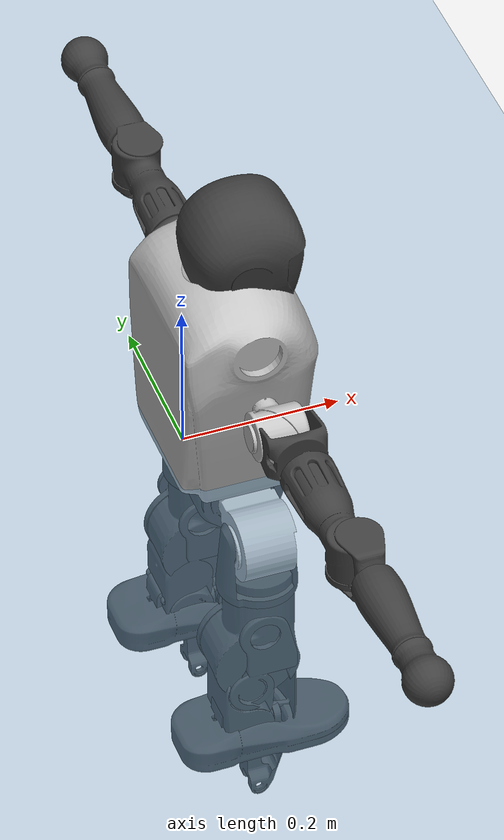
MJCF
<mujoco model="T1">
  <compiler angle="radian" assetdir="assets" balanceinertia="true" inertiafromgeom="false"/>

  <option timestep="0.005" density="1.2" viscosity="2e-05"/>

  <size nkey="1"/>

  <visual>
    <quality shadowsize="8192"/>
    <map shadowclip="0.5"/>
  </visual>

  <default>
    <default class="/">
      <joint armature="0.01" damping="0.01" frictionloss="0.1"/>
      <geom contype="0" conaffinity="0" group="1" solref="-1000 -80"/>
      <site size="0.01 0.005 0.005" group="5"/>
      <general forcelimited="true" biastype="affine" gainprm="25" biasprm="0 -25 -0.6"/>
      <default class="t1">
        <geom rgba="0.25 0.25 0.25 1"/>
        <default class="visual">
          <geom type="mesh" group="2"/>
        </default>
        <default class="collision">
          <geom group="3"/>
        </default>
        <default class="foot">
          <geom size="0.1115 0.05 0.015" type="box" condim="6" group="4" priority="1" solimp="0.015 1 0.015"/>
        </default>
        <default class="reward_collision_sphere">
          <geom group="5" rgba="1 0 0 1"/>
        </default>
      </default>
    </default>
  </default>

  <asset>
    <texture type="skybox" colorspace="auto" name="//unnamed_texture_0" builtin="gradient" rgb1="0.95 0.95 0.95" rgb2="0.95 0.95 0.95" width="100" height="600"/>
    <texture type="2d" colorspace="auto" name="texplane" builtin="checker" rgb1="0.345 0.575 0.748" rgb2="0.345 0.575 0.748" markrgb="1 1 1" width="512" height="512"/>
    <material name="MatPlane" class="/" texture="texplane" texuniform="true" texrepeat="2 2" specular="0.9"/>
    <mesh name="Trunk" class="/" file="Trunk.stl"/>
    <mesh name="H1" class="/" file="H1.stl"/>
    <mesh name="H2" class="/" file="H2.stl"/>
    <mesh name="AL1" class="/" file="AL1.stl"/>
    <mesh name="AL2" class="/" file="AL2.stl"/>
    <mesh name="AL3" class="/" file="AL3.stl"/>
    <mesh name="left_hand_link" class="/" file="left_hand_link.stl"/>
    <mesh name="AR1" class="/" file="AR1.stl"/>
    <mesh name="AR2" class="/" file="AR2.stl"/>
    <mesh name="AR3" class="/" file="AR3.stl"/>
    <mesh name="right_hand_link" class="/" file="right_hand_link.stl"/>
    <mesh name="Waist" class="/" file="Waist.stl"/>
    <mesh name="Hip_Pitch_Left" class="/" file="Hip_Pitch_Left.stl"/>
    <mesh name="Hip_Roll_Left" class="/" file="Hip_Roll_Left.stl"/>
    <mesh name="Hip_Yaw_Left" class="/" file="Hip_Yaw_Left.stl"/>
    <mesh name="Shank_Left" class="/" file="Shank_Left.stl"/>
    <mesh name="Ankle_Cross_Left" class="/" file="Ankle_Cross_Left.stl"/>
    <mesh name="left_foot_link" class="/" file="left_foot_link.stl"/>
    <mesh name="Hip_Pitch_Right" class="/" file="Hip_Pitch_Right.stl"/>
    <mesh name="Hip_Roll_Right" class="/" file="Hip_Roll_Right.stl"/>
    <mesh name="Hip_Yaw_Right" class="/" file="Hip_Yaw_Right.stl"/>
    <mesh name="Shank_Right" class="/" file="Shank_Right.stl"/>
    <mesh name="Ankle_Cross_Right" class="/" file="Ankle_Cross_Right.stl"/>
    <mesh name="right_foot_link" class="/" file="right_foot_link.stl"/>
  </asset>

  <worldbody>
    <geom name="floor" class="/" size="100 100 0.125" type="plane" group="0" material="MatPlane"/>
    <light name="toplight_shadow" class="/" pos="0 0 5" dir="0.0990148 0.0990148 -0.990148" type="directional" ambient="0.04 0.04 0.04" diffuse="0.55 0.55 0.55" specular="0.12 0.12 0.12"/>
    <light name="toplight_fill" class="/" pos="0 0 5" dir="0.0990148 0.0990148 -0.990148" type="directional" castshadow="false" ambient="0.04 0.04 0.04" diffuse="0.3 0.3 0.3" specular="0.08 0.08 0.08"/>
    <body name="trunk" childclass="t1" pos="-0.00195609 0.000186618 -0.0044493" quat="0.999999 -0.000773363 0.000671158 0.000481785">
      <inertial pos="0.0567105 -0.0036175 0.0620319" quat="0.99992 -0.00354191 -0.0121701 -3.34058e-05" mass="8.85954" diaginertia="0.112422 0.0973823 0.00468654"/>
      <joint name="//unnamed_joint_0" type="free" armature="0" damping="0" frictionloss="0"/>
      <geom name="//unnamed_geom_1" class="visual" rgba="0.76 0.76 0.76 1" mesh="Trunk"/>
      <geom name="//unnamed_geom_2" class="collision" size="0.066713 0.0889507 0.133426" pos="0.0618845 0 0.0717526" type="box"/>
      <geom name="//unnamed_geom_3" class="reward_collision_sphere" size="0.102293" pos="0.0618845 0 0.0597938"/>
      <geom name="//unnamed_geom_4" class="reward_collision_sphere" size="0.0133426" pos="0.0618845 0.0883298 0"/>
      <geom name="//unnamed_geom_5" class="reward_collision_sphere" size="0.0133426" pos="0.0618845 -0.0883298 0"/>
      <geom name="//unnamed_geom_6" class="reward_collision_sphere" size="0.0133426" pos="0.0618845 0.111192 0.107629"/>
      <geom name="//unnamed_geom_7" class="reward_collision_sphere" size="0.0133426" pos="0.0618845 -0.111192 0.107629"/>
      <site name="imu" pos="-0.0391681 0.0290332 -0.000639167" size="0.00889507"/>
      <camera name="track" pos="0 -2.07835 0" quat="0.707107 0.707107 0 0" mode="trackcom"/>
      <camera name="ego_camera" pos="0.125832 0 0.251134" quat="-0.5 -0.5 0.5 0.5"/>
      <body name="H1" pos="0.0638969 0.00169464 0.143489" quat="1 0.00070208 0.000393792 -2.09983e-05">
        <inertial pos="-0.00078725 -0.00369613 0.0325023" quat="0.763236 -0.00856106 -0.000693332 0.646062" mass="0.30045" diaginertia="0.00026347 0.000267999 1.0634e-05"/>
        <joint name="AAHead_yaw" pos="0 0 0" axis="0.00147957 0.00239005 0.999996" range="-1.57149 1.52491" armature="0.00949445" damping="0.00776573" frictionloss="0.0831758"/>
        <geom name="//unnamed_geom_8" class="visual" mesh="H1"/>
        <body name="H2" pos="-0.000161904 0.00640003 0.0359385" quat="1 2.63232e-05 0.000472234 -0.000336903">
          <inertial pos="-0.000239473 -0.00564322 0.0561643" quat="0.988736 0.105475 -0.0749035 -0.0752771" mass="0.410113" diaginertia="0.00243733 0.00235902 0.000130991"/>
          <joint name="Head_pitch" pos="0 0 0" axis="0.00511707 -0.999972 -0.00546206" range="-1.22276 0.293285" armature="0.011371" damping="0.0111103" frictionloss="0.0860165"/>
          <geom name="//unnamed_geom_9" class="visual" mesh="H2"/>
          <geom name="//unnamed_geom_10" class="collision" size="0.0711605" pos="0.0103141 0 0.0657732"/>
          <geom name="//unnamed_geom_11" class="reward_collision_sphere" size="0.0800556" pos="0.0206282 0 0.0597938"/>
        </body>
      </body>
      <body name="AL1" pos="0.0638586 0.114197 0.134541" quat="1 9.03263e-05 0.000578915 -0.000183775">
        <inertial pos="-0.00123241 0.0458566 -0.0065903" quat="0.504025 0.50017 -0.504219 0.491479" mass="0.369294" diaginertia="0.00157149 0.0015769 2.25423e-05"/>
        <joint name="Left_Shoulder_Pitch" pos="0 0 0" axis="0.00267051 0.999993 0.00242778" stiffness="0.0266927" range="-3.18702 1.27593" armature="0.00976406" damping="0.0113355" frictionloss="0.0913799"/>
        <geom name="//unnamed_geom_12" class="visual" rgba="0.76 0.76 0.76 1" mesh="AL1"/>
        <body name="AL2" pos="0.0045715 0.0428248 0.00156145" quat="0.999992 0.000531024 0.00380921 -0.000843807">
          <inertial pos="0.00379042 0.0381776 0.00411771" quat="0.492741 0.506816 -0.482044 0.517666" mass="0.0923688" diaginertia="0.000417189 0.000362683 1.20678e-05"/>
          <joint name="Left_Shoulder_Roll" pos="0 0 0" axis="-0.998988 -0.012991 -0.0430678" stiffness="0.00619623" range="-1.52644 1.75998" armature="0.00841369" damping="0.0408225" frictionloss="0.0872918"/>
          <geom name="//unnamed_geom_13" class="visual" mesh="AL2"/>
          <body name="AL3" pos="0.000491359 0.056895 0.00160179" quat="0.999991 0.00395913 -0.000682666 -0.00130836">
            <inertial pos="0.00238187 0.0908574 0.000226181" quat="0.70995 0.703848 0.0143167 -0.0190722" mass="0.659082" diaginertia="0.0134241 0.0145761 4.40903e-05"/>
            <joint name="Left_Elbow_Pitch" pos="0 0 0" axis="-0.00468458 -0.999971 -0.00602336" stiffness="0.00448903" range="-2.25961 2.28627" armature="0.00954287" damping="0.00426343" frictionloss="0.0938098"/>
            <geom name="//unnamed_geom_14" class="visual" mesh="AL3"/>
            <geom name="//unnamed_geom_15" class="collision" size="0.0266852 0.066713" pos="0 0.0519587 0" quat="0.707105 0.707108 0 0" type="cylinder"/>
            <geom name="//unnamed_geom_16" class="reward_collision_sphere" size="0.0320222"/>
            <body name="left_hand_link" pos="0.00438593 0.145423 -0.00238146" quat="0.999994 -0.00125012 0.00309188 -0.000320154">
              <inertial pos="-0.00171778 0.11441 0.006561" quat="0.721183 0.692369 0.0114809 -0.019708" mass="0.253191" diaginertia="0.0103647 0.0110975 1.83683e-05"/>
              <joint name="Left_Elbow_Yaw" pos="0 0 0" axis="0.0255395 0.00425859 0.999665" range="-2.44191 -0.0884703" armature="0.00842829" damping="0.018878" frictionloss="0.0541541"/>
              <geom name="//unnamed_geom_17" class="visual" mesh="left_hand_link"/>
              <geom name="//unnamed_geom_18" class="collision" size="0.0266852 0.0778318" pos="0 0.135093 0" quat="0.707105 0.707108 0 0" type="cylinder"/>
              <geom name="//unnamed_geom_19" class="reward_collision_sphere" size="0.0444753"/>
              <geom name="//unnamed_geom_20" class="reward_collision_sphere" size="0.0311327" pos="0 0.114309 0"/>
              <geom name="//unnamed_geom_21" class="reward_collision_sphere" size="0.0311327" pos="0 0.223422 0"/>
            </body>
          </body>
        </body>
      </body>
      <body name="AR1" pos="0.064661 -0.113712 0.134038" quat="0.999999 -0.000768671 0.000128307 0.000689111">
        <inertial pos="0.00104623 -0.0484606 0.0025242" quat="0.505087 0.493452 -0.497701 0.503672" mass="0.35842" diaginertia="0.00158573 0.00149352 2.13e-05"/>
        <joint name="Right_Shoulder_Pitch" pos="0 0 0" axis="0.00273489 -0.999977 -0.00627764" range="-1.36054 3.26151" armature="0.00813519" damping="0" frictionloss="0.0909889"/>
        <geom name="//unnamed_geom_22" class="visual" rgba="0.76 0.76 0.76 1" mesh="AR1"/>
        <body name="AR2" pos="0.00659147 -0.0528851 0.00257124" quat="1 -0.000231806 9.18368e-05 -0.000489273">
          <inertial pos="0.00575263 -0.0394159 0.00357309" quat="0.51521 0.48922 -0.503924 0.491206" mass="0.115851" diaginertia="0.000504904 0.000461693 1.32999e-05"/>
          <joint name="Right_Shoulder_Roll" pos="0 0 0" axis="-0.999999 0.00150715 -0.00023398" range="-1.76428 1.7052" armature="0.00945099" damping="0.0089724" frictionloss="0.116899"/>
          <geom name="//unnamed_geom_23" class="visual" mesh="AR2"/>
          <body name="AR3" pos="0.00132574 -0.0705983 -0.00585527" quat="0.999999 -0.000533685 0.000401118 0.000820321">
            <inertial pos="-0.000409243 -0.0898293 -0.000203687" quat="0.710687 0.702261 0.0354238 0.0223191" mass="0.72581" diaginertia="0.0152039 0.0149312 4.63465e-05"/>
            <joint name="Right_Elbow_Pitch" pos="0 0 0" axis="0.00224703 0.999994 0.00248864" range="-2.26952 2.25404" armature="0.0079598" damping="0" frictionloss="0.0579311"/>
            <geom name="//unnamed_geom_24" class="visual" mesh="AR3"/>
            <geom name="//unnamed_geom_25" class="collision" size="0.0266852 0.066713" pos="0 -0.0519587 0" quat="0.707105 0.707108 0 0" type="cylinder"/>
            <geom name="//unnamed_geom_26" class="reward_collision_sphere" size="0.0320222"/>
            <body name="right_hand_link" pos="0.00577307 -0.154411 0.000699415" quat="1 -0.000357657 0.00040869 0.000388938">
              <inertial pos="0.00223464 -0.11411 -0.0061384" quat="0.687563 0.725955 -0.0155319 -0.00236481" mass="0.258273" diaginertia="0.0107575 0.0109233 1.81146e-05"/>
              <joint name="Right_Elbow_Yaw" pos="0 0 0" axis="-0.00509883 -0.0139259 0.99989" range="0.0882458 2.47255" armature="0.00511785" damping="0.0165629" frictionloss="0.086707"/>
              <geom name="//unnamed_geom_27" class="visual" mesh="right_hand_link"/>
              <geom name="//unnamed_geom_28" class="collision" size="0.0266852 0.0778318" pos="0 -0.135093 0" quat="0.707105 0.707108 0 0" type="cylinder"/>
              <geom name="//unnamed_geom_29" class="reward_collision_sphere" size="0.0444753"/>
              <geom name="//unnamed_geom_30" class="reward_collision_sphere" size="0.0311327" pos="0 -0.114309 0"/>
              <geom name="//unnamed_geom_31" class="reward_collision_sphere" size="0.0311327" pos="0 -0.223422 0"/>
            </body>
          </body>
        </body>
      </body>
      <body name="Waist" pos="0.0622312 0.000359731 -0.0646866" quat="1 0.000526978 -9.46113e-05 -2.53463e-05">
        <inertial pos="-0.00441298 -0.000342817 0.00363983" quat="0.983993 -0.000619712 -0.17816 0.00406655" mass="1.85204" diaginertia="0.00664911 0.00736473 0.000393026"/>
        <joint name="Waist" pos="0 0 0" axis="0.00284399 -0.00353538 0.99999" range="-1.72997 1.56313" armature="0.0109932" damping="0.0100668" frictionloss="0.078841"/>
        <geom name="//unnamed_geom_32" class="visual" mesh="Waist"/>
        <body name="Hip_Pitch_Left" pos="0.00639002 0.104392 -0.000623428" quat="0.999994 0.00329428 -0.000195325 -0.00118846">
          <inertial pos="0.00294395 -0.015245 -0.010883" quat="0.974961 0.221769 0.0161232 0.00311409" mass="0.724442" diaginertia="0.00220512 0.00163331 9.92435e-05"/>
          <joint name="Left_Hip_Pitch" pos="0 0 0" axis="0.00652465 0.999918 -0.0110155" range="-1.81295 1.51623" armature="0.00864195" damping="0.00803012" frictionloss="0.0884815"/>
          <geom name="//unnamed_geom_33" class="visual" rgba="0.76 0.76 0.76 1" mesh="Hip_Pitch_Left"/>
          <body name="Hip_Roll_Left" pos="-0.00182737 0.00019607 -0.011273" quat="0.999996 -0.000657758 -0.00175345 0.00217133">
            <inertial pos="0.00244654 -0.000932861 -0.033419" quat="0.708814 -0.0112458 -0.00832135 0.705257" mass="0.273429" diaginertia="0.00201822 0.00201124 4.2818e-05"/>
            <joint name="Left_Hip_Roll" pos="0 0 0" axis="-0.999997 -0.00047665 0.00223057" stiffness="0.0102186" range="-1.54043 0.18176" armature="0.00854135" damping="0" frictionloss="0.0690125"/>
            <geom name="//unnamed_geom_34" class="visual" mesh="Hip_Roll_Left"/>
            <geom name="//unnamed_geom_35" class="reward_collision_sphere" size="0.0489229"/>
            <body name="Hip_Yaw_Left" pos="-0.00181175 -0.00169336 -0.0469526" quat="0.999999 -0.00124686 0.000178776 -0.000284857">
              <inertial pos="-0.00576727 -0.000483027 -0.0543483" quat="0.673587 -0.0234171 -0.0139371 0.738606" mass="1.54093" diaginertia="0.0308195 0.0336852 0.000194327"/>
              <joint name="Left_Hip_Yaw" pos="0 0 0" axis="0.0032679 -0.0292361 -0.999567" stiffness="0.000517097" range="-0.991712 1.05645" armature="0.0086793" damping="0" frictionloss="0.088648"/>
              <geom name="//unnamed_geom_36" class="visual" mesh="Hip_Yaw_Left"/>
              <geom name="//unnamed_geom_37" class="collision" size="0.0444753 0.0711605" type="cylinder"/>
              <body name="Shank_Left" pos="-0.0148145 0.000957797 -0.0802972" quat="1 -7.78405e-05 -0.000699829 0.000320964">
                <inertial pos="-0.00734868 0.000910968 -0.074371" quat="0.996801 -0.0179452 -0.0238372 0.0741487" mass="1.18689" diaginertia="0.0402928 0.0394464 0.000139917"/>
                <joint name="Left_Knee_Pitch" pos="0 0 0" axis="0.00283503 0.999894 -0.0142547" range="0.000347111 2.35019" armature="0.00928158" damping="0" frictionloss="0.0650432"/>
                <geom name="//unnamed_geom_38" class="visual" mesh="Shank_Left"/>
                <geom name="//unnamed_geom_39" class="collision" size="0.0444753 0.066713" pos="0 0 -0.0717526" type="cylinder"/>
                <geom name="//unnamed_geom_40" class="reward_collision_sphere" size="0.0578179"/>
                <body name="Ankle_Cross_Left" pos="9.84471e-05 0.000870697 -0.16805" quat="0.999999 -0.000684428 0.000836799 -0.000454375">
                  <inertial pos="-0.00587324 -0.00128979 0.00328454" quat="0.444139 0.551247 0.551175 0.441671" mass="0.0487209" diaginertia="2.90739e-05 2.98227e-05 8.2084e-07"/>
                  <joint name="Left_Ankle_Pitch" pos="0 0 0" axis="-0.00188649 0.999966 -0.00803115" range="-0.704992 0.307995" armature="0.00967771" damping="0.0105668" frictionloss="0.0634299"/>
                  <geom name="//unnamed_geom_41" class="visual" mesh="Ankle_Cross_Left"/>
                  <body name="left_foot_link" pos="-0.00614993 0.000790053 -0.000162427" quat="1 0.000108666 0.000158457 -1.4751e-05">
                    <inertial pos="-0.000962355 0.00672502 -0.00368356" quat="-0.00409164 0.622247 0.00655321 0.782783" mass="0.492169" diaginertia="0.00305041 0.00290857 0.000170283"/>
                    <joint name="Left_Ankle_Roll" pos="0 0 0" axis="-0.99999 0.00359035 0.00261591" range="-0.389996 0.44351" armature="0.00845298" damping="5.15715e-06" frictionloss="0.0988393"/>
                    <geom name="//unnamed_geom_42" class="visual" mesh="left_foot_link"/>
                    <geom name="left_foot" class="foot" size="0.100468 0.0346104 0.0128492" pos="0.0103141 0 -0.00896907"/>
                    <geom name="//unnamed_geom_44" class="reward_collision_sphere" size="0.0462543" pos="0.0103141 0 -0.00896907"/>
                    <geom name="//unnamed_geom_45" class="reward_collision_sphere" size="0.0266852" pos="0.0979837 -0.023901 -0.00896907"/>
                    <geom name="//unnamed_geom_46" class="reward_collision_sphere" size="0.0266852" pos="-0.0721985 -0.023901 -0.00896907"/>
                    <site name="left_foot" class="foot" pos="0.0103141 0 -0.00896907" size="0.00889507"/>
                  </body>
                </body>
              </body>
            </body>
          </body>
        </body>
        <body name="Hip_Pitch_Right" pos="0.000317319 -0.108447 -0.00309827" quat="1 0.000247385 -0.000501436 0.000633834">
          <inertial pos="0.000889397 0.00878557 -0.0174167" quat="0.975002 -0.221201 0.00553124 0.0202541" mass="0.730917" diaginertia="0.00213335 0.00181502 9.15889e-05"/>
          <joint name="Right_Hip_Pitch" pos="0 0 0" axis="0.0224467 -0.999719 0.00761461" stiffness="0.00468785" range="-1.5861 1.81195" armature="0.0068514" damping="0" frictionloss="0.0810041"/>
          <geom name="//unnamed_geom_47" class="visual" rgba="0.76 0.76 0.76 1" mesh="Hip_Pitch_Right"/>
          <body name="Hip_Roll_Right" pos="-0.00184191 0.00139225 -0.0129912" quat="0.999992 -0.00339173 -0.00135462 0.00176028">
            <inertial pos="-0.0065799 0.000295916 -0.0289159" quat="0.717036 -0.0220247 -0.013206 0.696563" mass="0.284635" diaginertia="0.00222026 0.00196012 4.08742e-05"/>
            <joint name="Right_Hip_Roll" pos="0 0 0" axis="-0.99994 -0.0090748 0.0061791" range="-0.19672 1.4798" armature="0.00986346" damping="0.00419756" frictionloss="0.089731"/>
            <geom name="//unnamed_geom_48" class="visual" mesh="Hip_Roll_Right"/>
            <geom name="//unnamed_geom_49" class="reward_collision_sphere" size="0.0489229"/>
            <body name="Hip_Yaw_Right" pos="0.00143018 0.00418041 -0.0505936" quat="0.999995 0.001073 0.00281999 -0.000413985">
              <inertial pos="-0.00951932 -0.00203152 -0.0529346" quat="0.723484 -0.0319348 -0.0397274 0.688457" mass="1.41648" diaginertia="0.025659 0.0254488 0.000180788"/>
              <joint name="Right_Hip_Yaw" pos="0 0 0" axis="0.00272297 -0.00263594 -0.999993" stiffness="0.00351586" range="-1.02517 1.16083" armature="0.00847368" damping="0.00825124" frictionloss="0.116985"/>
              <geom name="//unnamed_geom_50" class="visual" mesh="Hip_Yaw_Right"/>
              <geom name="//unnamed_geom_51" class="collision" size="0.0444753 0.0711605" type="cylinder"/>
              <body name="Shank_Right" pos="-0.00762382 -0.00322869 -0.0800722" quat="0.999995 -0.00190896 -0.00241613 4.86576e-06">
                <inertial pos="-0.0118949 -0.0017381 -0.0758083" quat="0.999116 -0.00664567 -0.0244933 -0.0335058" mass="1.10529" diaginertia="0.0410843 0.0441491 0.000153954"/>
                <joint name="Right_Knee_Pitch" pos="0 0 0" axis="0.0112916 -0.999907 0.00761796" range="-2.36244 -0.00623089" armature="0.0100377" damping="0" frictionloss="0.0867166"/>
                <geom name="//unnamed_geom_52" class="visual" mesh="Shank_Right"/>
                <geom name="//unnamed_geom_53" class="collision" size="0.0444753 0.066713" pos="0 0 -0.0717526" type="cylinder"/>
                <geom name="//unnamed_geom_54" class="reward_collision_sphere" size="0.0578179"/>
                <body name="Ankle_Cross_Right" pos="0.00263482 -0.000899361 -0.163731" quat="0.999996 -0.000781614 -0.00202817 -0.0018798">
                  <inertial pos="-0.00369073 0.000831268 -0.00509002" quat="0.444672 0.549814 0.550848 0.443326" mass="0.0575616" diaginertia="3.54826e-05 3.21701e-05 8.79492e-07"/>
                  <joint name="Right_Ankle_Pitch" pos="0 0 0" axis="-0.0263829 -0.999154 -0.0315352" stiffness="0.00446407" range="-0.362429 0.939732" armature="0.00687623" damping="0.0196547" frictionloss="0.124534"/>
                  <geom name="//unnamed_geom_55" class="visual" mesh="Ankle_Cross_Right"/>
                  <body name="right_foot_link" pos="-0.00332477 -0.00195063 -0.00857099" quat="1 -0.000205549 0.000742662 0.000265973">
                    <inertial pos="0.000992867 -0.000483931 1.69723e-05" quat="-0.00454327 0.619496 0.00963945 0.784927" mass="0.450488" diaginertia="0.00326621 0.00296779 0.000168603"/>
                    <joint name="Right_Ankle_Roll" pos="0 0 0" axis="-0.99975 0.0117729 0.0190289" range="-0.603717 0.419482" armature="0.0108369" damping="0.0093639" frictionloss="0.0988293"/>
                    <geom name="//unnamed_geom_56" class="visual" mesh="right_foot_link"/>
                    <geom name="right_foot" class="foot" size="0.12639 0.0343393 0.0115894" pos="0.0103141 0 -0.00896907"/>
                    <geom name="//unnamed_geom_58" class="reward_collision_sphere" size="0.0355803"/>
                    <geom name="//unnamed_geom_59" class="reward_collision_sphere" size="0.0266852" pos="0.0103141 0 -0.00896907"/>
                    <geom name="//unnamed_geom_60" class="reward_collision_sphere" size="0.0266852" pos="0.0979837 0.023901 -0.00896907"/>
                    <geom name="//unnamed_geom_61" class="reward_collision_sphere" size="0.0266852" pos="-0.0721985 0.023901 -0.00896907"/>
                    <site name="right_foot" class="foot" pos="0.0103141 0 -0.00896907" size="0.00889507"/>
                  </body>
                </body>
              </body>
            </body>
          </body>
        </body>
      </body>
    </body>
  </worldbody>

  <contact>
    <pair class="/" geom1="floor" geom2="left_foot" name="//unnamed_contact_0"/>
    <pair class="/" geom1="floor" geom2="right_foot" name="//unnamed_contact_1"/>
  </contact>

  <actuator>
    <general name="AAHead_yaw" class="/" joint="AAHead_yaw" forcerange="-6.45546 6.45546" gainprm="19.9506" biasprm="0 -19.9506 -0.54116"/>
    <general name="Head_pitch" class="/" joint="Head_pitch" forcerange="-6.74875 6.74875" gainprm="19.9506" biasprm="0 -19.9506 -0.54116"/>
    <general name="Left_Shoulder_Pitch" class="/" joint="Left_Shoulder_Pitch" forcerange="-15.1448 15.1448" gainprm="19.9506" biasprm="0 -19.9506 -0.54116"/>
    <general name="Left_Shoulder_Roll" class="/" joint="Left_Shoulder_Roll" forcerange="-15.51 15.51" gainprm="19.9506" biasprm="0 -19.9506 -0.54116"/>
    <general name="Left_Elbow_Pitch" class="/" joint="Left_Elbow_Pitch" forcerange="-12.9898 12.9898" gainprm="19.9506" biasprm="0 -19.9506 -0.54116"/>
    <general name="Left_Elbow_Yaw" class="/" joint="Left_Elbow_Yaw" forcerange="-14.9113 14.9113" gainprm="19.9506" biasprm="0 -19.9506 -0.54116"/>
    <general name="Right_Shoulder_Pitch" class="/" joint="Right_Shoulder_Pitch" forcerange="-15.6785 15.6785" gainprm="19.9506" biasprm="0 -19.9506 -0.54116"/>
    <general name="Right_Shoulder_Roll" class="/" joint="Right_Shoulder_Roll" forcerange="-15.9095 15.9095" gainprm="19.9506" biasprm="0 -19.9506 -0.54116"/>
    <general name="Right_Elbow_Pitch" class="/" joint="Right_Elbow_Pitch" forcerange="-15.4934 15.4934" gainprm="19.9506" biasprm="0 -19.9506 -0.54116"/>
    <general name="Right_Elbow_Yaw" class="/" joint="Right_Elbow_Yaw" forcerange="-12.731 12.731" gainprm="19.9506" biasprm="0 -19.9506 -0.54116"/>
    <general name="Waist" class="/" joint="Waist" forcerange="-26.1982 26.1982" gainprm="19.9506" biasprm="0 -19.9506 -0.54116"/>
    <general name="Left_Hip_Pitch" class="/" joint="Left_Hip_Pitch" forcerange="-51.9952 51.9952" gainprm="19.9506" biasprm="0 -19.9506 -0.54116"/>
    <general name="Left_Hip_Roll" class="/" joint="Left_Hip_Roll" forcerange="-28.5625 28.5625" gainprm="19.9506" biasprm="0 -19.9506 -0.54116"/>
    <general name="Left_Hip_Yaw" class="/" joint="Left_Hip_Yaw" forcerange="-27.4587 27.4587" gainprm="19.9506" biasprm="0 -19.9506 -0.54116"/>
    <general name="Left_Knee_Pitch" class="/" joint="Left_Knee_Pitch" forcerange="-41.9883 41.9883" gainprm="19.9506" biasprm="0 -19.9506 -0.54116"/>
    <general name="Left_Ankle_Pitch" class="/" joint="Left_Ankle_Pitch" forcerange="-19.1459 19.1459" gainprm="19.9506" biasprm="0 -19.9506 -0.54116"/>
    <general name="Left_Ankle_Roll" class="/" joint="Left_Ankle_Roll" forcerange="-13.5858 13.5858" gainprm="19.9506" biasprm="0 -19.9506 -0.54116"/>
    <general name="Right_Hip_Pitch" class="/" joint="Right_Hip_Pitch" forcerange="-29.6342 29.6342" gainprm="19.9506" biasprm="0 -19.9506 -0.54116"/>
    <general name="Right_Hip_Roll" class="/" joint="Right_Hip_Roll" forcerange="-28.3013 28.3013" gainprm="19.9506" biasprm="0 -19.9506 -0.54116"/>
    <general name="Right_Hip_Yaw" class="/" joint="Right_Hip_Yaw" forcerange="-27.4945 27.4945" gainprm="19.9506" biasprm="0 -19.9506 -0.54116"/>
    <general name="Right_Knee_Pitch" class="/" joint="Right_Knee_Pitch" forcerange="-48.1404 48.1404" gainprm="19.9506" biasprm="0 -19.9506 -0.54116"/>
    <general name="Right_Ankle_Pitch" class="/" joint="Right_Ankle_Pitch" forcerange="-18.291 18.291" gainprm="19.9506" biasprm="0 -19.9506 -0.54116"/>
    <general name="Right_Ankle_Roll" class="/" joint="Right_Ankle_Roll" forcerange="-16.8376 16.8376" gainprm="19.9506" biasprm="0 -19.9506 -0.54116"/>
  </actuator>

  <sensor>
    <gyro site="imu" name="imu_angular_velocity"/>
    <velocimeter site="imu" name="imu_linear_velocity"/>
    <framelinvel objtype="site" objname="left_foot" name="left_foot_global_linear_velocity"/>
    <framelinvel objtype="site" objname="right_foot" name="right_foot_global_linear_velocity"/>
  </sensor>

  <keyframe>
    <key name="home" qpos="0 0 0.6385 1 0 0 0 0 0 0 1.4 0 -0.4 0 -1.4 0 0.4 0 -0.4 0 0 0.8 -0.4 0 0.4 0 0 -0.8 0.4 0"/>
  </keyframe>
</mujoco>
